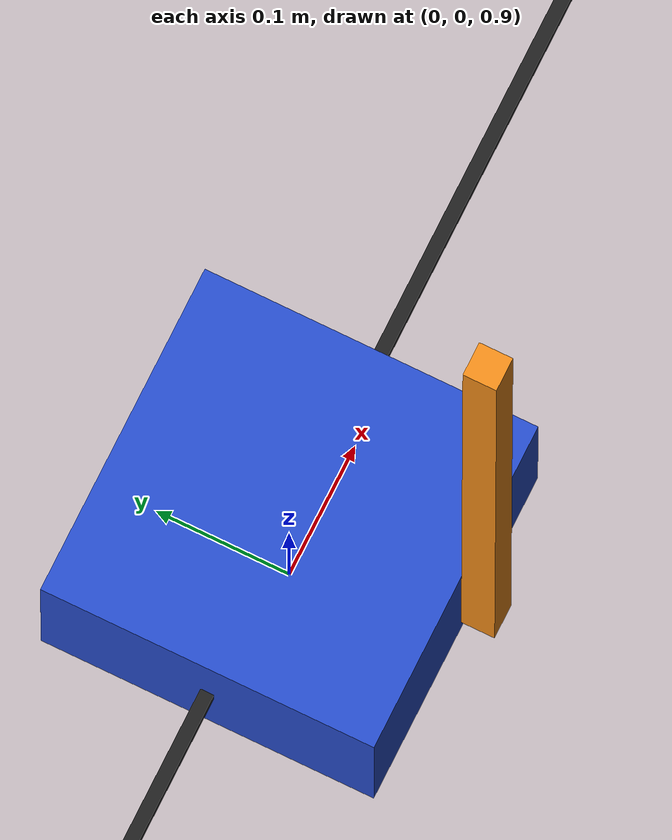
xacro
<?xml version="1.0"?>
<!-- Revolute-Revolute Manipulator -->
<robot name="invpend" xmlns:xacro="http://www.ros.org/wiki/xacro">

  <!-- Constants for robot dimensions -->
  <xacro:property name="PI" value="3.1415926535897931"/>
  <xacro:property name="mass_slider" value="100" /> <!-- arbitrary value for mass -->
  <xacro:property name="mass_cart" value="0.5" /> <!-- arbitrary value for mass -->
  <xacro:property name="mass_pole" value="0.2" /> <!-- arbitrary value for mass -->
  <xacro:property name="width" value="0.25" /> <!-- cart width -->
  <xacro:property name="height" value="0.125" /> <!-- cart height -->
  <xacro:property name="depth" value="0.25" /> <!-- cart depth -->
  <xacro:property name="length_slider" value="100" /> <!-- pole length -->
  <xacro:property name="length_pole" value="0.6" /> <!-- pole length -->
  <xacro:property name="radius" value="0.01" /> <!-- slender bar radius -->
  <xacro:property name="radius_pole" value="0.025" /> <!-- pole radius -->

  <!-- Import all Gazebo-customization elements, including Gazebo colors -->
  <xacro:include filename="$(find invpend_description)/urdf/invpend.gazebo" />
  <!-- Import Rviz colors -->
  <xacro:include filename="$(find invpend_description)/urdf/materials.xacro" />

  <!-- Used for fixing robot to Gazebo 'base_link' -->
  <link name="world"/>

  <joint name="fixed" type="fixed">
    <parent link="world"/>
    <child link="slidebar"/>
    <origin xyz="0 0 1"/>
  </joint>

  <!-- Slider Link -->
  <link name="slidebar">
    <visual>
      <origin xyz="0 0 0" rpy="0 0 0"/>
      <geometry>
	<box size="${length_slider} ${radius} ${radius}"/>
      </geometry>
      <material name="black"/>
    </visual>

    <inertial>
      <origin xyz="0 0 0" rpy="0 0 0"/>
      <mass value="${mass_slider}"/>
      <inertia
	  ixx="${mass_slider*length_slider*length_slider/12}" ixy="0.0" ixz="0.0"
	  iyy="0.0" iyz="0.0"
	  izz="${mass_slider*length_slider*length_slider/12}"/>
    </inertial>
  </link>

  <joint name="slider_to_cart" type="prismatic">
    <parent link="slidebar"/>
    <child link="cart"/>
    <origin xyz="0 0 0" rpy="0 0 0"/>
    <axis xyz="1 0 0"/>
    <limit effort="100.0" lower="-${length_slider/2}" upper="${length_slider/2}" velocity="1000"/>
    <dynamics damping="0.1"/>
  </joint>

  <!-- Cart Link -->
  <link name="cart">
    <collision>
      <origin xyz="0 0 0" rpy="0 0 0"/>
      <geometry>
	<box size="${width} ${depth} ${height}"/>
      </geometry>
    </collision>

    <visual>
      <origin xyz="0 0 0" rpy="0 0 0"/>
      <geometry>
	<box size="${width} ${depth} ${height}"/>
      </geometry>
      <material name="blue"/>
    </visual>

    <inertial>
      <origin xyz="0 0 0" rpy="0 0 0"/>
      <mass value="${mass_cart}"/>
      <inertia
	  ixx="${mass_cart*(depth*depth+height*height)/12}" ixy="0.0" ixz="0.0"
	  iyy="${mass_cart*(depth*depth+width*width)/12}" iyz="0.0"
	  izz="${mass_cart*(width*width+height*height)/12}"/>
    </inertial>
  </link>

  <joint name="cart_to_pole" type="continuous">
    <parent link="cart"/>
    <child link="pole"/>
    <origin xyz="0 ${-depth/2-radius-radius_pole/2} ${height/4}" rpy="0 0 0"/>
    <axis xyz="0 1 0"/>
    <limit effort="1000.0" velocity="1000.0"/>
  </joint>

  <!-- Pole Link -->
  <link name="pole">
    <collision>
      <origin xyz="0 0 ${length_pole/2}" rpy="0 0 0"/>
      <geometry>
	<box size="${radius_pole} ${radius_pole} ${length_pole}"/>
      </geometry>
    </collision>

    <visual>
      <origin xyz="0 0 ${length_pole/2}" rpy="0 0 0"/>
      <geometry>
	<box size="${radius_pole} ${radius_pole} ${length_pole}"/>
      </geometry>
      <material name="orange"/>
    </visual>

    <inertial>
      <origin xyz="0 0 ${length_pole/2}" rpy="0 0 0"/>
      <mass value="${mass_pole}"/>
      <inertia
	  ixx="${mass_pole*length_pole*length_pole/3}" ixy="0.0" ixz="0.0"
	  iyy="${mass_pole*length_pole*length_pole/3}" iyz="0.0"
	  izz="${mass_pole*radius_pole*radius_pole/12}"/>
    </inertial>
  </link>

  <transmission name="tran1">
    <type>transmission_interface/SimpleTransmission</type>
    <joint name="slider_to_cart">
      <hardwareInterface>hardware_interface/EffortJointInterface</hardwareInterface>
    </joint>
    <actuator name="motor_pris">
      <hardwareInterface>hardware_interface/EffortJointInterface</hardwareInterface>
      <mechanicalReduction>1</mechanicalReduction>
    </actuator>
  </transmission>

  <transmission name="tran2">
    <type>transmission_interface/SimpleTransmission</type>
    <joint name="cart_to_pole">
      <hardwareInterface>hardware_interface/EffortJointInterface</hardwareInterface>
    </joint>
    <actuator name="motor_revo">
      <hardwareInterface>hardware_interface/EffortJointInterface</hardwareInterface>
      <mechanicalReduction>1</mechanicalReduction>
    </actuator>
  </transmission>

</robot>
